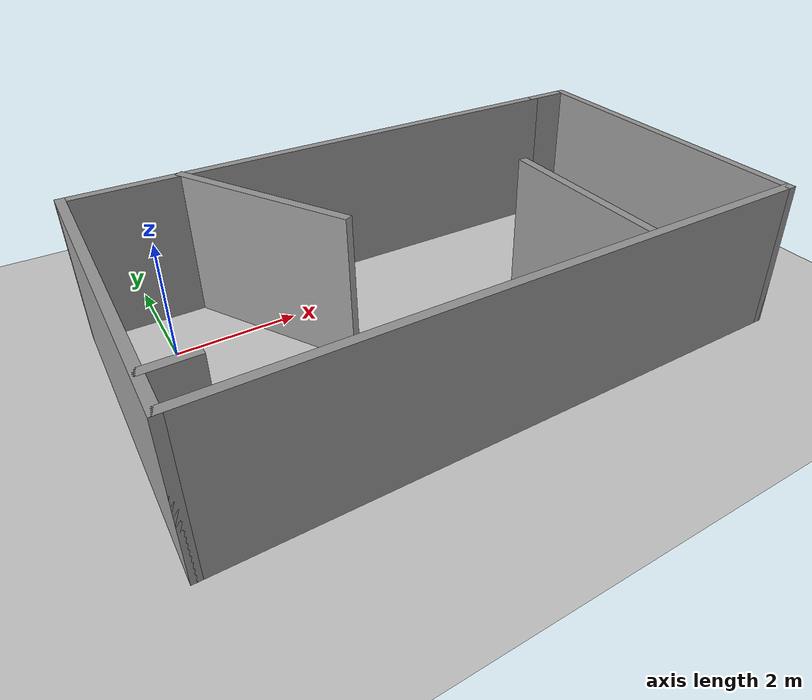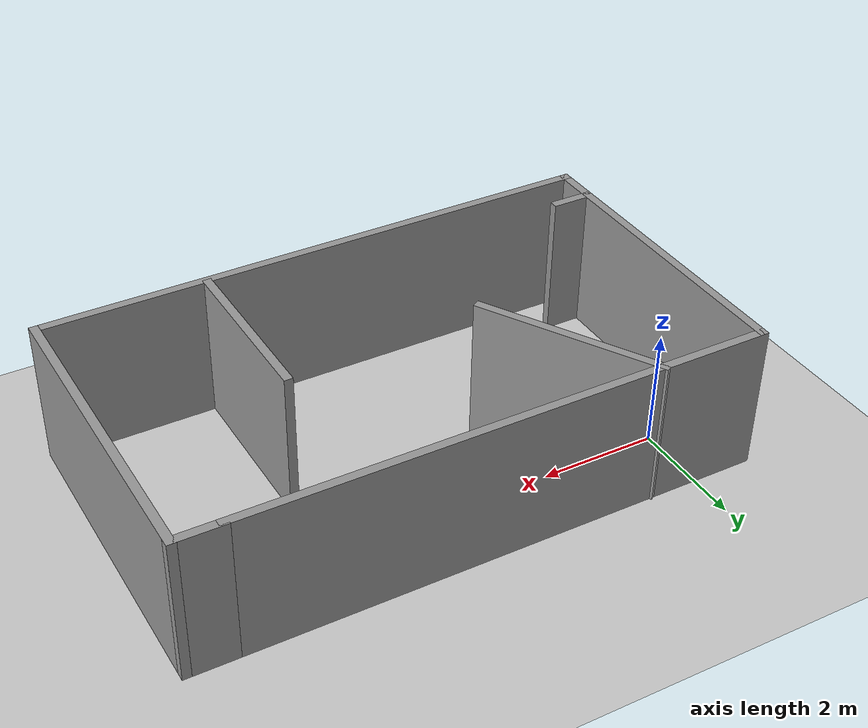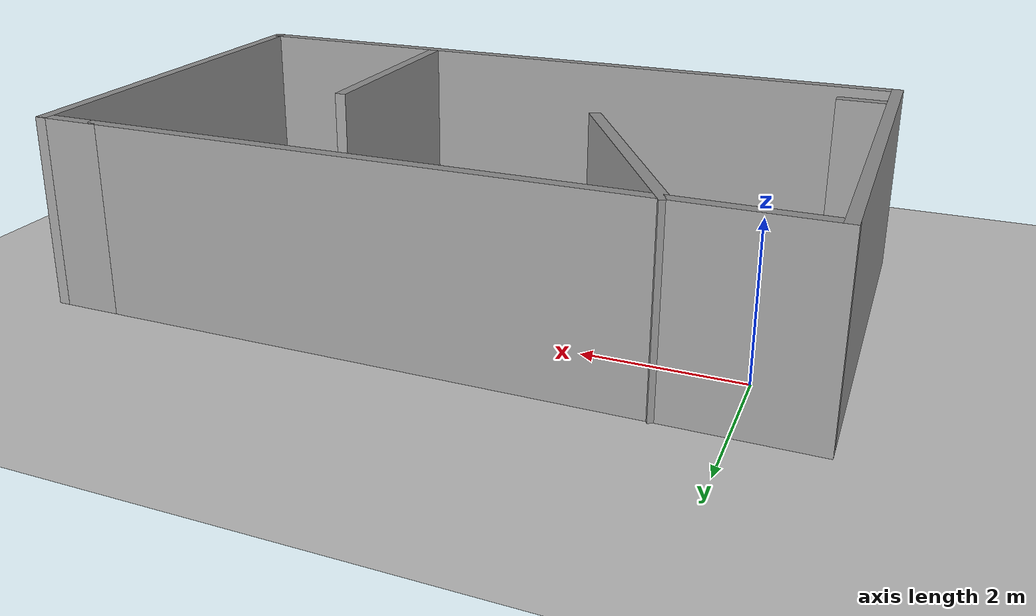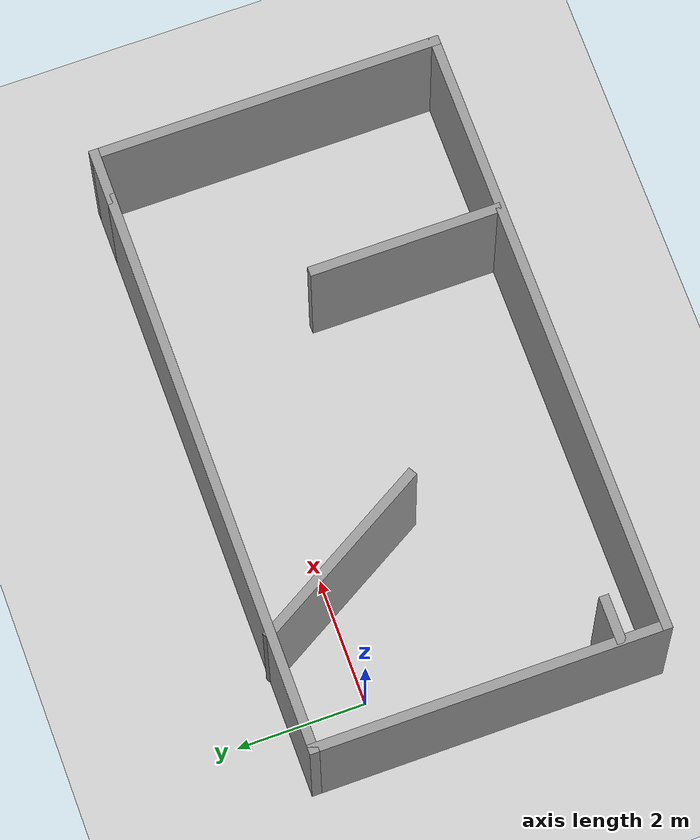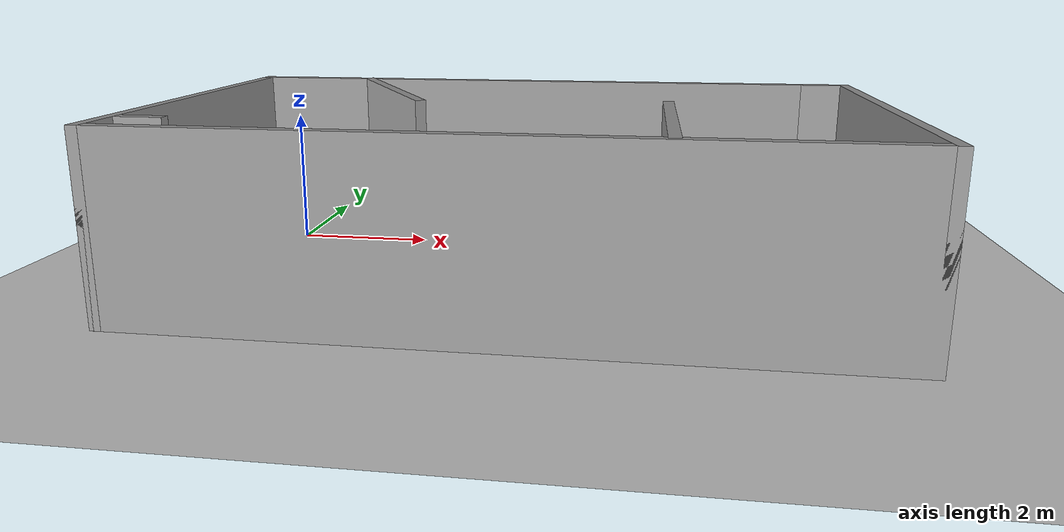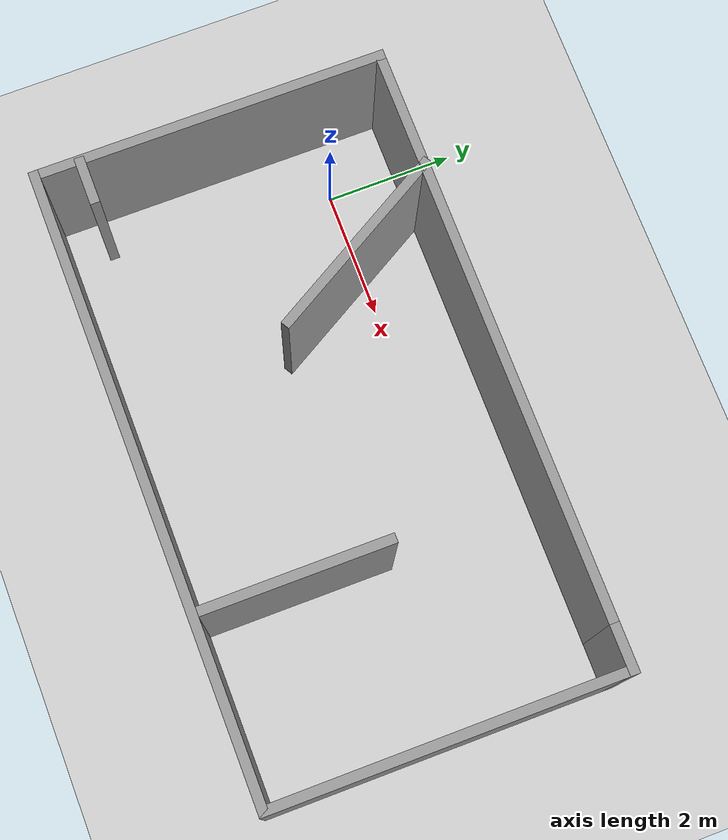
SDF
<sdf version="1.7">
 <world name="default">
  <light name="sun" type="directional">
   <pose>0 0 10 0 -0 0</pose>
   <diffuse>0.8 0.8 0.8 1</diffuse>
   <specular>0.2 0.2 0.2 1</specular>
   <attenuation>
    <range>1000</range>
    <constant>0.9</constant>
    <linear>0.01</linear>
    <quadratic>0.001</quadratic>
   </attenuation>
   <direction>-0.5 0.1 -0.9</direction>
   <spot><inner_angle>0</inner_angle><outer_angle>0</outer_angle><falloff>0</falloff></spot>
  </light>
  <model name="ground_plane">
   <static>1</static>
   <link name="link">
    <collision name="collision">
     <geometry><plane><normal>0 0 1</normal><size>100 100</size></plane></geometry>
     <surface>
      <contact><collide_bitmask>65535</collide_bitmask></contact>
      <friction><ode><mu>100</mu><mu2>50</mu2></ode></friction>
     </surface>
    </collision>
    <visual name="visual">
     <cast_shadows>0</cast_shadows>
     <geometry><plane><normal>0 0 1</normal><size>100 100</size></plane></geometry>
     <material>
      <script><uri>file://media/materials/scripts/gazebo.material</uri><name>Gazebo/Grey</name></script>
     </material>
    </visual>
   </link>
  </model>
  <gravity>0 0 -9.8</gravity>
  <magnetic_field>6e-06 2.3e-05 -4.2e-05</magnetic_field>
  <atmosphere type="adiabatic"/>
  <physics type="ode">
   <max_step_size>0.001</max_step_size>
   <real_time_factor>1</real_time_factor>
   <real_time_update_rate>1000</real_time_update_rate>
  </physics>
  <scene><ambient>0.4 0.4 0.4 1</ambient><background>0.7 0.7 0.7 1</background><shadows>1</shadows></scene>
  <audio><device>default</device></audio>
  <spherical_coordinates>
   <surface_model>EARTH_WGS84</surface_model>
   <latitude_deg>0</latitude_deg>
   <longitude_deg>0</longitude_deg>
   <elevation>0</elevation>
   <heading_deg>0</heading_deg>
  </spherical_coordinates>
  <model name="Untitled">
   <pose>3.8255 -0.786101 0 0 -0 0</pose>
   <link name="Wall_0">
    <collision name="Wall_0_Collision">
     <geometry><box><size>9 0.15 2.5</size></box></geometry>
     <pose>0 0 1.25 0 -0 0</pose>
    </collision>
    <visual name="Wall_0_Visual">
     <pose>0 0 1.25 0 -0 0</pose>
     <geometry><box><size>9 0.15 2.5</size></box></geometry>
     <material>
      <script><uri>file://media/materials/scripts/gazebo.material</uri><name>Gazebo/Grey</name></script>
      <ambient>1 1 1 1</ambient>
     </material>
     <meta><layer>0</layer></meta>
    </visual>
    <pose>-0.375 1.9225 0 0 -0 3.14159</pose>
   </link>
   <link name="Wall_1">
    <collision name="Wall_1_Collision">
     <geometry><box><size>5.5 0.15 2.5</size></box></geometry>
     <pose>0 0 1.25 0 -0 0</pose>
    </collision>
    <visual name="Wall_1_Visual">
     <pose>0 0 1.25 0 -0 0</pose>
     <geometry><box><size>5.5 0.15 2.5</size></box></geometry>
     <material>
      <script><uri>file://media/materials/scripts/gazebo.material</uri><name>Gazebo/Grey</name></script>
      <ambient>1 1 1 1</ambient>
     </material>
     <meta><layer>0</layer></meta>
    </visual>
    <pose>-4.8 -0.7525 0 0 -0 -1.5708</pose>
   </link>
   <link name="Wall_10">
    <collision name="Wall_10_Collision">
     <geometry><box><size>0.75 0.15 2.5</size></box></geometry>
     <pose>0 0 1.25 0 -0 0</pose>
    </collision>
    <visual name="Wall_10_Visual">
     <pose>0 0 1.25 0 -0 0</pose>
     <geometry><box><size>0.75 0.15 2.5</size></box></geometry>
     <material>
      <script><uri>file://media/materials/scripts/gazebo.material</uri><name>Gazebo/Grey</name></script>
      <ambient>1 1 1 1</ambient>
     </material>
     <meta><layer>0</layer></meta>
    </visual>
    <pose>-4.47 -2.7375 0 0 -0 0</pose>
   </link>
   <link name="Wall_2">
    <collision name="Wall_2_Collision">
     <geometry><box><size>9.75 0.15 2.5</size></box></geometry>
     <pose>0 0 1.25 0 -0 0</pose>
    </collision>
    <visual name="Wall_2_Visual">
     <pose>0 0 1.25 0 -0 0</pose>
     <geometry><box><size>9.75 0.15 2.5</size></box></geometry>
     <material>
      <script><uri>file://media/materials/scripts/gazebo.material</uri><name>Gazebo/Grey</name></script>
      <ambient>1 1 1 1</ambient>
     </material>
     <meta><layer>0</layer></meta>
    </visual>
    <pose>0 -3.4275 0 0 -0 0</pose>
   </link>
   <link name="Wall_3">
    <collision name="Wall_3_Collision">
     <geometry><box><size>5.5 0.15 2.5</size></box></geometry>
     <pose>0 0 1.25 0 -0 0</pose>
    </collision>
    <visual name="Wall_3_Visual">
     <pose>0 0 1.25 0 -0 0</pose>
     <geometry><box><size>5.5 0.15 2.5</size></box></geometry>
     <material>
      <script><uri>file://media/materials/scripts/gazebo.material</uri><name>Gazebo/Grey</name></script>
      <ambient>1 1 1 1</ambient>
     </material>
     <meta><layer>0</layer></meta>
    </visual>
    <pose>4.8 -0.7525 0 0 -0 1.5708</pose>
   </link>
   <link name="Wall_4">
    <collision name="Wall_4_Collision">
     <geometry><box><size>0.9 0.15 2.5</size></box></geometry>
     <pose>0 0 1.25 0 -0 0</pose>
    </collision>
    <visual name="Wall_4_Visual">
     <pose>0 0 1.25 0 -0 0</pose>
     <geometry><box><size>0.9 0.15 2.5</size></box></geometry>
     <material>
      <script><uri>file://media/materials/scripts/gazebo.material</uri><name>Gazebo/Grey</name></script>
      <ambient>1 1 1 1</ambient>
     </material>
     <meta><layer>0</layer></meta>
    </visual>
    <pose>4.425 1.9225 0 0 -0 3.14159</pose>
   </link>
   <link name="Wall_6">
    <collision name="Wall_6_Collision">
     <geometry><box><size>3.25 0.15 2.5</size></box></geometry>
     <pose>0 0 1.25 0 -0 0</pose>
    </collision>
    <visual name="Wall_6_Visual">
     <pose>0 0 1.25 0 -0 0</pose>
     <geometry><box><size>3.25 0.15 2.5</size></box></geometry>
     <material>
      <script><uri>file://media/materials/scripts/gazebo.material</uri><name>Gazebo/Grey</name></script>
      <ambient>1 1 1 1</ambient>
     </material>
     <meta><layer>0</layer></meta>
    </visual>
    <pose>-2.225 0.590161 0 0 -0 -1.0472</pose>
   </link>
   <link name="Wall_8">
    <collision name="Wall_8_Collision">
     <geometry><box><size>3 0.15 2.5</size></box></geometry>
     <pose>0 0 1.25 0 -0 0</pose>
    </collision>
    <visual name="Wall_8_Visual">
     <pose>0 0 1.25 0 -0 0</pose>
     <geometry><box><size>3 0.15 2.5</size></box></geometry>
     <material>
      <script><uri>file://media/materials/scripts/gazebo.material</uri><name>Gazebo/Grey</name></script>
      <ambient>1 1 1 1</ambient>
     </material>
     <meta><layer>0</layer></meta>
    </visual>
    <pose>1.98 -1.9325 0 0 -0 1.5708</pose>
   </link>
   <static>1</static>
  </model>
 </world>
</sdf>
